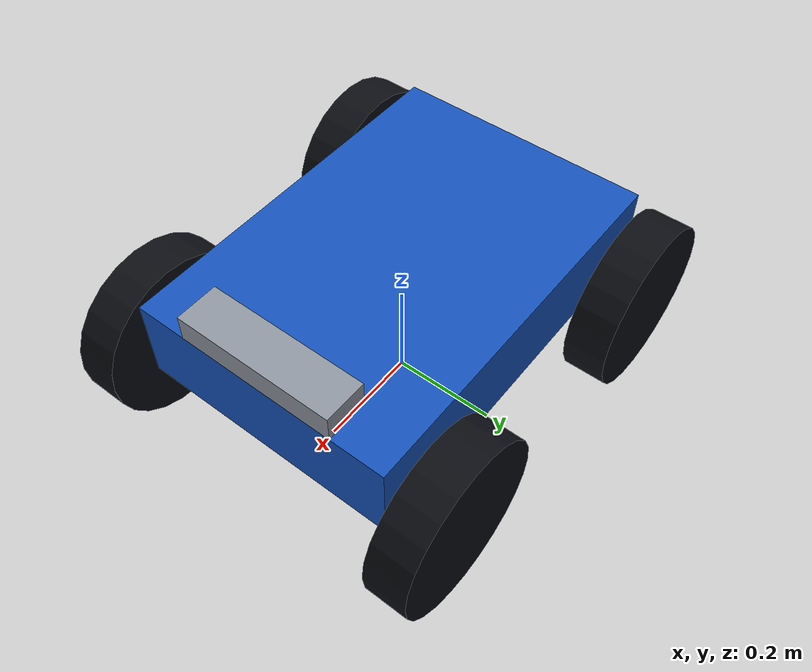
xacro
<?xml version="1.0"?>
<robot name="rover_diff" xmlns:xacro="http://www.ros.org/wiki/xacro">
  <xacro:include filename="$(find gazebo_tutorial_description)/urdf/macros/rover_macros.xacro"/>

  <xacro:rover_base body_mass="12.0"/>

  <!-- skid-steer: 네 바퀴가 모두 base_link에 고정된 축을 중심으로 돈다. -->
  <xacro:fixed_axle_wheel
    prefix="front_left" parent="base_link"
    x="${rover_wheelbase / 2.0}" y="${rover_track_width / 2.0}" z="-0.08"/>
  <xacro:fixed_axle_wheel
    prefix="front_right" parent="base_link"
    x="${rover_wheelbase / 2.0}" y="-${rover_track_width / 2.0}" z="-0.08"/>
  <xacro:fixed_axle_wheel
    prefix="rear_left" parent="base_link"
    x="-${rover_wheelbase / 2.0}" y="${rover_track_width / 2.0}" z="-0.08"/>
  <xacro:fixed_axle_wheel
    prefix="rear_right" parent="base_link"
    x="-${rover_wheelbase / 2.0}" y="-${rover_track_width / 2.0}" z="-0.08"/>

  <gazebo>
    <plugin name="rover_diff_drive" filename="libgazebo_ros_diff_drive.so">
      <ros>
        <namespace>/</namespace>
        <remapping>cmd_vel:=cmd_vel</remapping>
        <remapping>odom:=odom</remapping>
      </ros>

      <!-- ROS 2용 플러그인은 wheel pair 수만큼 아래 태그를 반복해서 읽는다. -->
      <num_wheel_pairs>2</num_wheel_pairs>
      <left_joint>front_left_wheel_joint</left_joint>
      <right_joint>front_right_wheel_joint</right_joint>
      <left_joint>rear_left_wheel_joint</left_joint>
      <right_joint>rear_right_wheel_joint</right_joint>
      <wheel_separation>${rover_track_width}</wheel_separation>
      <wheel_separation>${rover_track_width}</wheel_separation>
      <wheel_diameter>${2.0 * rover_wheel_radius}</wheel_diameter>
      <wheel_diameter>${2.0 * rover_wheel_radius}</wheel_diameter>

      <max_wheel_torque>20.0</max_wheel_torque>
      <max_wheel_acceleration>4.0</max_wheel_acceleration>
      <update_rate>100</update_rate>

      <!-- 0 = ENCODER. 바퀴 회전량을 적분한 wheel odometry를 사용한다. -->
      <odometry_source>0</odometry_source>
      <publish_odom>true</publish_odom>
      <publish_odom_tf>true</publish_odom_tf>
      <publish_wheel_tf>false</publish_wheel_tf>
      <odometry_frame>odom</odometry_frame>
      <robot_base_frame>base_footprint</robot_base_frame>
      <covariance_x>0.001</covariance_x>
      <covariance_y>0.001</covariance_y>
      <covariance_yaw>0.01</covariance_yaw>
    </plugin>
  </gazebo>

  <gazebo>
    <plugin name="rover_diff_joint_states" filename="libgazebo_ros_joint_state_publisher.so">
      <ros>
        <namespace>/</namespace>
      </ros>
      <update_rate>50</update_rate>
      <joint_name>front_left_wheel_joint</joint_name>
      <joint_name>front_right_wheel_joint</joint_name>
      <joint_name>rear_left_wheel_joint</joint_name>
      <joint_name>rear_right_wheel_joint</joint_name>
    </plugin>
  </gazebo>
</robot>

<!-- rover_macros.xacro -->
<robot xmlns:xacro="http://www.ros.org/wiki/xacro">
  <!-- 4륜 로버 두 모델이 공유하는 치수와 관성 매크로 -->
  <xacro:property name="rover_wheel_radius" value="0.16"/>
  <xacro:property name="rover_wheel_width" value="0.08"/>
  <xacro:property name="rover_track_width" value="0.62"/>
  <xacro:property name="rover_wheelbase" value="0.56"/>
  <xacro:property name="PI" value="3.141592653589793"/>

  <material name="rover_blue">
    <color rgba="0.08 0.32 0.72 1"/>
  </material>
  <material name="rover_dark">
    <color rgba="0.04 0.05 0.07 1"/>
  </material>
  <material name="rover_metal">
    <color rgba="0.55 0.58 0.62 1"/>
  </material>

  <xacro:macro name="box_inertial" params="mass x y z">
    <inertial>
      <mass value="${mass}"/>
      <inertia
        ixx="${mass * (y * y + z * z) / 12.0}"
        ixy="0.0"
        ixz="0.0"
        iyy="${mass * (x * x + z * z) / 12.0}"
        iyz="0.0"
        izz="${mass * (x * x + y * y) / 12.0}"/>
    </inertial>
  </xacro:macro>

  <!-- 실린더 geometry의 기본 대칭축은 local z축이다. visual/collision을 x축으로
       90도 돌리므로 관성도 대칭축이 rover의 y축을 향하도록 적는다. -->
  <xacro:macro name="wheel_inertial" params="mass radius width">
    <inertial>
      <mass value="${mass}"/>
      <inertia
        ixx="${mass * (3.0 * radius * radius + width * width) / 12.0}"
        ixy="0.0"
        ixz="0.0"
        iyy="${mass * radius * radius / 2.0}"
        iyz="0.0"
        izz="${mass * (3.0 * radius * radius + width * width) / 12.0}"/>
    </inertial>
  </xacro:macro>

  <xacro:macro name="rover_base" params="body_mass:=12.0">
    <!-- base_footprint는 바닥 투영점이며 질량/충돌이 없는 TF 전용 링크다. -->
    <link name="base_footprint"/>

    <link name="base_link">
      <visual>
        <geometry>
          <box size="0.72 0.50 0.16"/>
        </geometry>
        <material name="rover_blue"/>
      </visual>
      <collision>
        <geometry>
          <box size="0.72 0.50 0.16"/>
        </geometry>
      </collision>
      <xacro:box_inertial mass="${body_mass}" x="0.72" y="0.50" z="0.16"/>
    </link>

    <joint name="base_footprint_joint" type="fixed">
      <parent link="base_footprint"/>
      <child link="base_link"/>
      <origin xyz="0 0 0.24" rpy="0 0 0"/>
    </joint>

    <!-- 진행 방향(+x)을 쉽게 알아볼 수 있는 전방 표식 -->
    <link name="front_marker_link">
      <visual>
        <geometry>
          <box size="0.08 0.30 0.05"/>
        </geometry>
        <material name="rover_metal"/>
      </visual>
      <xacro:box_inertial mass="0.05" x="0.08" y="0.30" z="0.05"/>
    </link>
    <joint name="front_marker_joint" type="fixed">
      <parent link="base_link"/>
      <child link="front_marker_link"/>
      <origin xyz="0.32 0 0.105" rpy="0 0 0"/>
    </joint>
  </xacro:macro>

  <xacro:macro name="rover_wheel_link" params="name">
    <link name="${name}">
      <visual>
        <origin xyz="0 0 0" rpy="${PI / 2.0} 0 0"/>
        <geometry>
          <cylinder radius="${rover_wheel_radius}" length="${rover_wheel_width}"/>
        </geometry>
        <material name="rover_dark"/>
      </visual>
      <!-- Ackermann 플러그인은 wheel joint child의 첫 collision에서 반지름과
           바퀴 중심을 읽는다. 따라서 wheel link에는 collision을 정확히 하나 둔다. -->
      <collision>
        <origin xyz="0 0 0" rpy="${PI / 2.0} 0 0"/>
        <geometry>
          <cylinder radius="${rover_wheel_radius}" length="${rover_wheel_width}"/>
        </geometry>
      </collision>
      <xacro:wheel_inertial mass="0.8" radius="${rover_wheel_radius}" width="${rover_wheel_width}"/>
    </link>

    <gazebo reference="${name}">
      <material>Gazebo/Black</material>
      <mu1>1.2</mu1>
      <mu2>1.2</mu2>
      <kp>1000000.0</kp>
      <kd>10.0</kd>
      <minDepth>0.001</minDepth>
    </gazebo>
  </xacro:macro>

  <xacro:macro name="fixed_axle_wheel" params="prefix parent x y z">
    <xacro:rover_wheel_link name="${prefix}_wheel_link"/>
    <joint name="${prefix}_wheel_joint" type="continuous">
      <parent link="${parent}"/>
      <child link="${prefix}_wheel_link"/>
      <origin xyz="${x} ${y} ${z}" rpy="0 0 0"/>
      <axis xyz="0 1 0"/>
      <limit effort="40.0" velocity="30.0"/>
      <dynamics damping="0.05" friction="0.0"/>
    </joint>
  </xacro:macro>

  <xacro:macro name="steered_wheel" params="prefix parent x y z">
    <!-- URDF에는 universal joint가 없으므로 조향과 구름을 두 joint로 분리한다. -->
    <link name="${prefix}_steering_link">
      <visual>
        <geometry>
          <box size="0.06 0.06 0.10"/>
        </geometry>
        <material name="rover_metal"/>
      </visual>
      <collision>
        <geometry>
          <box size="0.06 0.06 0.10"/>
        </geometry>
      </collision>
      <xacro:box_inertial mass="0.15" x="0.06" y="0.06" z="0.10"/>
    </link>
    <joint name="${prefix}_steering_joint" type="revolute">
      <parent link="${parent}"/>
      <child link="${prefix}_steering_link"/>
      <origin xyz="${x} ${y} ${z}" rpy="0 0 0"/>
      <axis xyz="0 0 1"/>
      <!-- max_steer=0.60 rad일 때 안쪽 바퀴 목표각은 약 0.833 rad이다. -->
      <limit lower="-1.0" upper="1.0" effort="40.0" velocity="2.0"/>
      <dynamics damping="0.3" friction="0.1"/>
    </joint>

    <xacro:rover_wheel_link name="${prefix}_wheel_link"/>
    <joint name="${prefix}_wheel_joint" type="continuous">
      <parent link="${prefix}_steering_link"/>
      <child link="${prefix}_wheel_link"/>
      <origin xyz="0 0 0" rpy="0 0 0"/>
      <axis xyz="0 1 0"/>
      <limit effort="40.0" velocity="30.0"/>
      <dynamics damping="0.05" friction="0.0"/>
    </joint>
  </xacro:macro>

</robot>
